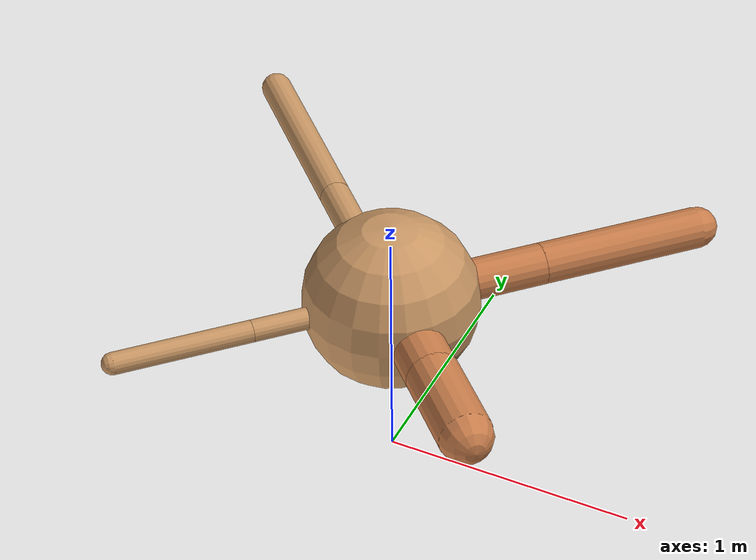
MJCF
<?xml version="1.0" ?>
<mujoco model="ant">

	<compiler angle="degree" coordinate="local" inertiafromgeom="true"/>

	<option integrator="RK4" timestep="0.01"/>

	<custom>

		<numeric data="0.0 0.0 0.55 1.0 0.0 0.0 0.0 0.0 1.0 0.0 -1.0 0.0 -1.0 0.0 1.0" name="init_qpos"/>

	</custom>

	<default>

		<joint armature="1" damping="1" limited="true"/>

		<geom conaffinity="0" condim="3" density="5.0" friction="1.5 0.1 0.1" margin="0.01" rgba="0.8 0.6 0.4 1"/>

	</default>

	<worldbody>

		<body name="torso" pos="0 0 0.75">

			<geom name="torso_geom" pos="0 0 0" size="0.3431803419188386" type="sphere"/>

			<!--joint armature="0" damping="0" limited="false" margin="0.01" name="root" pos="0 0 0" type="free"/-->

			<body name="front_left_leg" pos="0 0 0">

				<geom fromto="0 0 0 0.2 0.2 0" name="aux_1_geom" size="0.08131585403043991" type="capsule" rgba=".8 .5 .3 1"/>

				<body name="aux_1" pos="0.2 0.2 0">

					<joint axis="0 0 1" name="hip_1" pos="0.0 0.0 0.0" range="-40 40" type="hinge"/>

					<geom fromto="0 0 0 0.23227702485439525 0.23227702485439525 0" name="left_leg_geom" size="0.08131585403043991" type="capsule" rgba=".8 .5 .3 1"/>

					<body pos="0.23227702485439525 0.23227702485439525 0" name="front_left_foot">

						<joint axis="-1 1 0" name="ankle_1" pos="0.0 0.0 0.0" range="30 100" type="hinge"/>

						<geom fromto="0 0 0 0.4645540497087905 0.4645540497087905 0" name="left_ankle_geom" size="0.08131585403043991" type="capsule" rgba=".8 .5 .3 1"/>

					</body>

				</body>

			</body>

			<body name="front_right_leg" pos="0 0 0">

				<geom fromto="0 0 0 -0.2 0.2 0" name="aux_2_geom" size="0.06245936007197192" type="capsule"/>

				<body name="aux_2" pos="-0.2 0.2 0">

					<joint axis="0 0 1" name="hip_2" pos="0.0 0.0 0.0" range="-40 40" type="hinge"/>

					<geom fromto="0 0 0 -0.2786194320693485 0.2786194320693485 0" name="right_leg_geom" size="0.06245936007197192" type="capsule"/>

					<body pos="-0.2786194320693485 0.2786194320693485 0" name="front_right_foot">

						<joint axis="1 1 0" name="ankle_2" pos="0.0 0.0 0.0" range="-100 -30" type="hinge"/>

						<geom fromto="0 0 0 -0.557238864138697 0.557238864138697 0" name="right_ankle_geom" size="0.06245936007197192" type="capsule"/>

					</body>

				</body>

			</body>

			<body name="left_back_leg" pos="0 0 0">

				<geom fromto="0 0 0 -0.2 -0.2 0" name="aux_3_geom" size="0.04272576055057467" type="capsule"/>

				<body name="aux_3" pos="-0.2 -0.2 0">

					<joint axis="0 0 1" name="hip_3" pos="0.0 0.0 0.0" range="-40 40" type="hinge"/>

					<geom fromto="0 0 0 -0.1883133544752864 -0.1883133544752864 0" name="back_leg_geom" size="0.04272576055057467" type="capsule"/>

					<body pos="-0.1883133544752864 -0.1883133544752864 0" name="left_back_foot">

						<joint axis="-1 1 0" name="ankle_3" pos="0.0 0.0 0.0" range="-100 -30" type="hinge"/>

						<geom fromto="0 0 0 -0.3766267089505728 -0.3766267089505728 0" name="third_ankle_geom" size="0.04272576055057467" type="capsule"/>

					</body>

				</body>

			</body>

			<body name="right_back_leg" pos="0 0 0">

				<geom fromto="0 0 0 0.2 -0.2 0" name="aux_4_geom" size="0.1042588284250995" type="capsule" rgba=".8 .5 .3 1"/>

				<body name="aux_4" pos="0.2 -0.2 0">

					<joint axis="0 0 1" name="hip_4" pos="0.0 0.0 0.0" range="-40 40" type="hinge"/>

					<geom fromto="0 0 0 0.1212230410475413 -0.1212230410475413 0" name="rightback_leg_geom" size="0.1042588284250995" type="capsule" rgba=".8 .5 .3 1"/>

					<body pos="0.1212230410475413 -0.1212230410475413 0" name="right_back_foot">

						<joint axis="1 1 0" name="ankle_4" pos="0.0 0.0 0.0" range="30 100" type="hinge"/>

						<geom fromto="0 0 0 0.2424460820950826 -0.2424460820950826 0" name="fourth_ankle_geom" size="0.1042588284250995" type="capsule" rgba=".8 .5 .3 1"/>

					</body>

				</body>

			</body>

		</body>

	</worldbody>

	<actuator>

		<motor ctrllimited="true" ctrlrange="-1.0 1.0" joint="hip_4" gear="150"/>

		<motor ctrllimited="true" ctrlrange="-1.0 1.0" joint="ankle_4" gear="150"/>

		<motor ctrllimited="true" ctrlrange="-1.0 1.0" joint="hip_1" gear="150"/>

		<motor ctrllimited="true" ctrlrange="-1.0 1.0" joint="ankle_1" gear="150"/>

		<motor ctrllimited="true" ctrlrange="-1.0 1.0" joint="hip_2" gear="150"/>

		<motor ctrllimited="true" ctrlrange="-1.0 1.0" joint="ankle_2" gear="150"/>

		<motor ctrllimited="true" ctrlrange="-1.0 1.0" joint="hip_3" gear="150"/>

		<motor ctrllimited="true" ctrlrange="-1.0 1.0" joint="ankle_3" gear="150"/>

	</actuator>

</mujoco>
